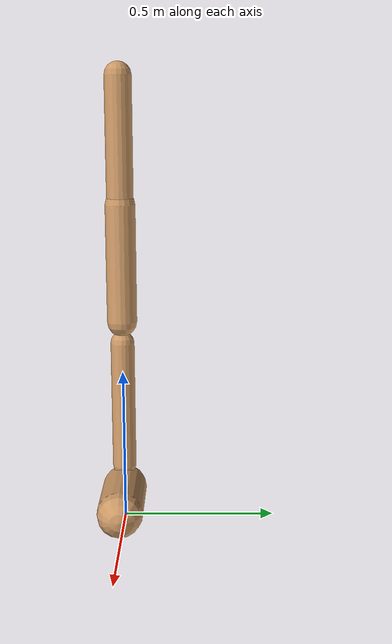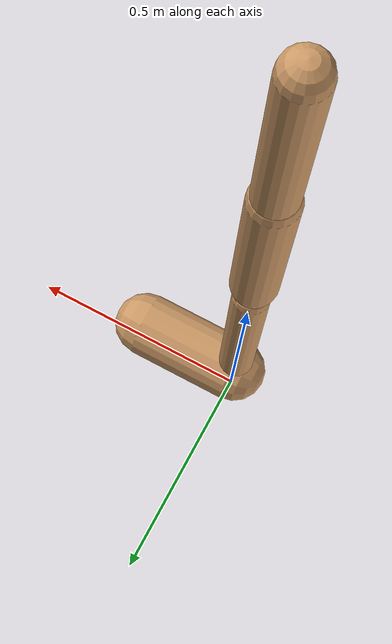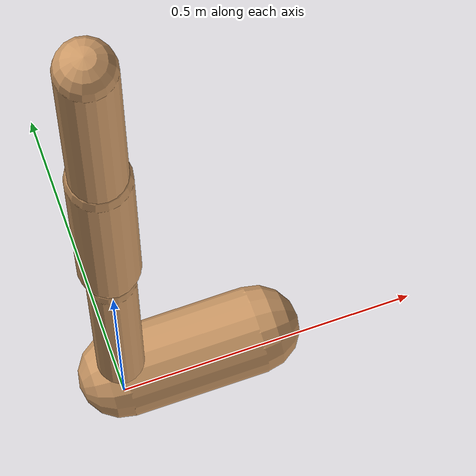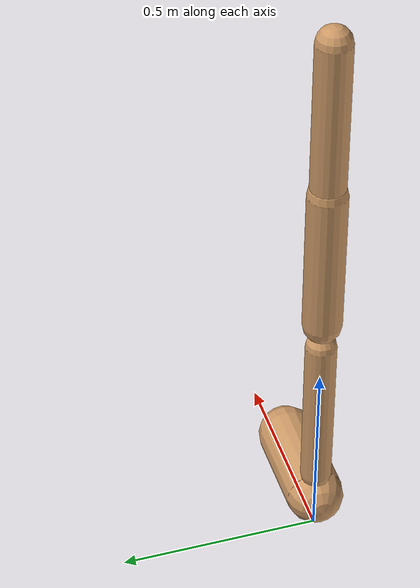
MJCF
<mujoco model="walker2d">
  <compiler angle="degree" coordinate="global" inertiafromgeom="true" />
  <default>
    <joint armature="0.01" damping=".1" limited="true" />
    <geom conaffinity="0" condim="3" contype="1" density="1000" friction="0.8 .1 .1" rgba="0.8 0.6 .4 1" />
  </default>
  <option integrator="RK4" timestep="0.002" />
  <worldbody>

    <body name="torso" pos="0 0 -0.14959562875368515">
      <joint armature="0" axis="1 0 0" damping="0" limited="false" name="ignorex" pos="0 0 0" stiffness="0" type="slide" />
      <joint armature="0" axis="0 0 1" damping="0" limited="false" name="ignorez" pos="0 0 0" ref="1.25" stiffness="0" type="slide" />
      <joint armature="0" axis="0 1 0" damping="0" limited="false" name="ignorey" pos="0 0 0" stiffness="0" type="hinge" />
      <geom fromto="0 0 1.45 0 0 1.05" name="torso_geom" size="0.042952461263145336" type="capsule" />
      <body name="thigh">
        <joint axis="0 -1 0" name="thigh_joint" pos="0 0 1.05" range="-150 0" type="hinge" />
        <geom fromto="0.0 0.0 1.05 0.0 0.0 0.6708610873043772" name="thigh_geom" size="0.04838055207690651" type="capsule" />
        <body name="leg" pos="0.0 0.0 0.07086108730437723">
          <joint axis="0 -1 0" name="leg_joint" pos="0 0 0.6" range="-150 0" type="hinge" />
          <geom fromto="0.0 0.0 0.6 0.0 0.0 0.17873454144930798" name="leg_geom" size="0.03870444166152521" type="capsule" />
          <body name="foot" pos="0.0 0.0 0.07873454144930797">
            <joint axis="0 -1 0" name="foot_joint" pos="0 0 0.1" range="-45 45" type="hinge" />
            <geom fromto="-0.0 0.0 0.1 0.22940529447243777 0.0 0.1" name="foot_geom" size="0.07267898814529346" type="capsule" />
          </body>
        </body>
      </body>

      <body name="thigh_left">
        <joint axis="0 -1 0" name="thigh_left_joint" pos="0 0 1.05" range="-150 0" type="hinge" />
        <geom fromto="0.0 0.0 1.05 0.0 0.0 0.6708610873043772" name="thigh_left_geom" rgba=".7 .3 .6 1" size="0.04838055207690651" type="capsule" />
        <body name="leg_left" pos="0.0 0.0 0.07086108730437723">
          <joint axis="0 -1 0" name="leg_left_joint" pos="0 0 0.6" range="-150 0" type="hinge" />
          <geom fromto="0.0 0.0 0.6 0.0 0.0 0.17873454144930798" name="leg_left_geom" rgba=".7 .3 .6 1" size="0.03870444166152521" type="capsule" />
          <body name="foot_left" pos="0.0 0.0 0.07873454144930797">
            <joint axis="0 -1 0" name="foot_left_joint" pos="0 0 0.1" range="-45 45" type="hinge" />
            <geom fromto="-0.0 0.0 0.1 0.22940529447243777 0.0 0.1" name="foot_left_geom" rgba=".7 .3 .6 1" size="0.07267898814529346" type="capsule" />
          </body>
        </body>
      </body>
    </body>
  </worldbody>
  <actuator>

    <motor ctrllimited="true" ctrlrange="-1.0 1.0" gear="100" joint="thigh_joint" />
    <motor ctrllimited="true" ctrlrange="-1.0 1.0" gear="100" joint="leg_joint" />
    <motor ctrllimited="true" ctrlrange="-1.0 1.0" gear="100" joint="foot_joint" />
    <motor ctrllimited="true" ctrlrange="-1.0 1.0" gear="100" joint="thigh_left_joint" />
    <motor ctrllimited="true" ctrlrange="-1.0 1.0" gear="100" joint="leg_left_joint" />
    <motor ctrllimited="true" ctrlrange="-1.0 1.0" gear="100" joint="foot_left_joint" />

  </actuator>
</mujoco>
